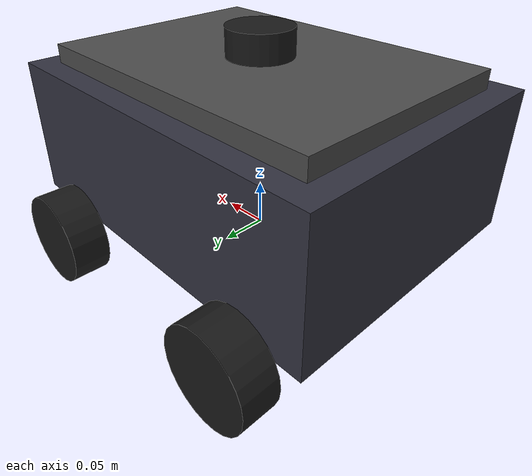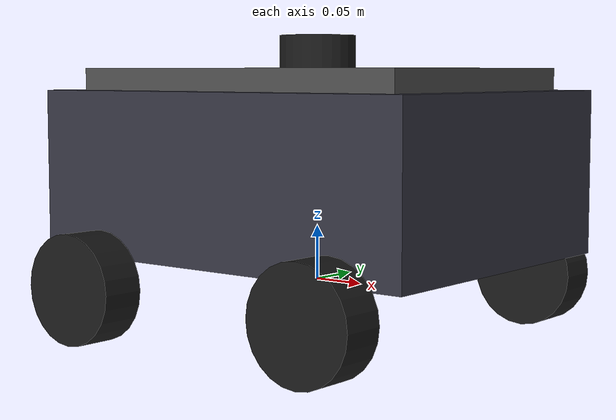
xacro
<?xml version="1.0"?>
<robot xmlns:xacro="http://www.ros.org/wiki/xacro" name="haller">

  <!-- Arguments -->
  <xacro:arg name="use_sim" default="false"/>
  <xacro:arg name="use_fake_hardware" default="false"/>
  <xacro:arg name="sim_gazebo" default="false"/>

  <!-- Properties -->
  <xacro:property name="use_sim" value="$(arg use_sim)"/>
  <xacro:property name="use_fake_hardware" value="$(arg use_fake_hardware)"/>
  <xacro:property name="sim_gazebo" value="$(arg sim_gazebo)"/>

  <!-- Include modular xacro files -->
  <xacro:include filename="$(find haller_description)/urdf/materials.xacro"/>
  <xacro:include filename="$(find haller_description)/urdf/inertia_macros.xacro"/>
  <xacro:include filename="$(find haller_description)/urdf/haller_base.xacro"/>
  <xacro:include filename="$(find haller_description)/urdf/haller_wheels.xacro"/>
  <xacro:include filename="$(find haller_description)/urdf/haller_sensors.xacro"/>
  <xacro:include filename="$(find haller_description)/urdf/haller_ros2_control.xacro"/>

  <!-- Base Link -->
  <link name="base_link"/>

  <!-- Base Footprint - for navigation -->
  <link name="base_footprint"/>
  <joint name="base_footprint_joint" type="fixed">
    <parent link="base_link"/>
    <child link="base_footprint"/>
    <origin xyz="0 0 -0.05" rpy="0 0 0"/>
  </joint>

  <!-- Chassis -->
  <xacro:haller_base/>

  <!-- Wheels -->
  <xacro:haller_wheels/>

  <!-- Sensors -->
  <xacro:haller_sensors/>

  <!-- ROS2 Control -->
  <xacro:haller_ros2_control
    use_sim="$(arg use_sim)"
    use_fake_hardware="$(arg use_fake_hardware)"
    sim_gazebo="$(arg sim_gazebo)"/>

  <!-- Gazebo plugins -->
  <xacro:if value="${sim_gazebo}">
    <xacro:include filename="$(find haller_description)/urdf/gazebo_plugins.xacro"/>
    <xacro:gazebo_plugins/>
  </xacro:if>

</robot>

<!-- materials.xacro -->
<robot xmlns:xacro="http://www.ros.org/wiki/xacro">

  <!-- Material Definitions -->

  <material name="white">
    <color rgba="1.0 1.0 1.0 1.0"/>
  </material>

  <material name="black">
    <color rgba="0.1 0.1 0.1 1.0"/>
  </material>

  <material name="dark_grey">
    <color rgba="0.3 0.3 0.3 1.0"/>
  </material>

  <material name="light_grey">
    <color rgba="0.7 0.7 0.7 1.0"/>
  </material>

  <material name="orange">
    <color rgba="1.0 0.5 0.0 1.0"/>
  </material>

  <material name="blue">
    <color rgba="0.2 0.4 0.8 1.0"/>
  </material>

  <material name="green">
    <color rgba="0.0 0.8 0.0 1.0"/>
  </material>

  <material name="red">
    <color rgba="0.8 0.0 0.0 1.0"/>
  </material>

  <material name="haller_chassis">
    <color rgba="0.2 0.2 0.25 1.0"/>
  </material>

  <material name="haller_accent">
    <color rgba="0.9 0.5 0.1 1.0"/>
  </material>

</robot>

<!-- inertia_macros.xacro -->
<robot xmlns:xacro="http://www.ros.org/wiki/xacro">

  <!-- Inertia Macros -->

  <!-- Box inertia -->
  <xacro:macro name="box_inertia" params="m x y z">
    <inertia
      ixx="${(1/12) * m * (y*y + z*z)}"
      ixy="0.0"
      ixz="0.0"
      iyy="${(1/12) * m * (x*x + z*z)}"
      iyz="0.0"
      izz="${(1/12) * m * (x*x + y*y)}"/>
  </xacro:macro>

  <!-- Cylinder inertia (oriented along z-axis) -->
  <xacro:macro name="cylinder_inertia" params="m r h">
    <inertia
      ixx="${(1/12) * m * (3*r*r + h*h)}"
      ixy="0.0"
      ixz="0.0"
      iyy="${(1/12) * m * (3*r*r + h*h)}"
      iyz="0.0"
      izz="${(1/2) * m * r*r}"/>
  </xacro:macro>

  <!-- Sphere inertia -->
  <xacro:macro name="sphere_inertia" params="m r">
    <inertia
      ixx="${(2/5) * m * r*r}"
      ixy="0.0"
      ixz="0.0"
      iyy="${(2/5) * m * r*r}"
      iyz="0.0"
      izz="${(2/5) * m * r*r}"/>
  </xacro:macro>

  <!-- Box inertial macro -->
  <xacro:macro name="box_inertial" params="mass x y z *origin">
    <inertial>
      <xacro:insert_block name="origin"/>
      <mass value="${mass}"/>
      <xacro:box_inertia m="${mass}" x="${x}" y="${y}" z="${z}"/>
    </inertial>
  </xacro:macro>

  <!-- Cylinder inertial macro -->
  <xacro:macro name="cylinder_inertial" params="mass radius length *origin">
    <inertial>
      <xacro:insert_block name="origin"/>
      <mass value="${mass}"/>
      <xacro:cylinder_inertia m="${mass}" r="${radius}" h="${length}"/>
    </inertial>
  </xacro:macro>

  <!-- Sphere inertial macro -->
  <xacro:macro name="sphere_inertial" params="mass radius *origin">
    <inertial>
      <xacro:insert_block name="origin"/>
      <mass value="${mass}"/>
      <xacro:sphere_inertia m="${mass}" r="${radius}"/>
    </inertial>
  </xacro:macro>

</robot>

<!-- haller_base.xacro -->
<robot xmlns:xacro="http://www.ros.org/wiki/xacro">

  <!-- Robot Dimensions -->
  <xacro:property name="chassis_length" value="0.40"/>
  <xacro:property name="chassis_width" value="0.30"/>
  <xacro:property name="chassis_height" value="0.15"/>
  <xacro:property name="chassis_mass" value="10.0"/>
  <xacro:property name="chassis_z_offset" value="0.10"/>

  <!-- Top plate for sensors -->
  <xacro:property name="top_plate_height" value="0.02"/>
  <xacro:property name="top_plate_mass" value="0.5"/>

  <xacro:macro name="haller_base">

    <!-- Chassis Link -->
    <link name="chassis_link">
      <visual>
        <origin xyz="0 0 ${chassis_z_offset}" rpy="0 0 0"/>
        <geometry>
          <box size="${chassis_length} ${chassis_width} ${chassis_height}"/>
        </geometry>
        <material name="haller_chassis"/>
      </visual>
      <collision>
        <origin xyz="0 0 ${chassis_z_offset}" rpy="0 0 0"/>
        <geometry>
          <box size="${chassis_length} ${chassis_width} ${chassis_height}"/>
        </geometry>
      </collision>
      <xacro:box_inertial mass="${chassis_mass}"
        x="${chassis_length}" y="${chassis_width}" z="${chassis_height}">
        <origin xyz="0 0 ${chassis_z_offset}" rpy="0 0 0"/>
      </xacro:box_inertial>
    </link>

    <joint name="chassis_joint" type="fixed">
      <parent link="base_link"/>
      <child link="chassis_link"/>
      <origin xyz="0 0 0" rpy="0 0 0"/>
    </joint>

    <!-- Top Plate Link -->
    <link name="top_plate_link">
      <visual>
        <origin xyz="0 0 0" rpy="0 0 0"/>
        <geometry>
          <box size="${chassis_length - 0.05} ${chassis_width - 0.05} ${top_plate_height}"/>
        </geometry>
        <material name="dark_grey"/>
      </visual>
      <collision>
        <origin xyz="0 0 0" rpy="0 0 0"/>
        <geometry>
          <box size="${chassis_length - 0.05} ${chassis_width - 0.05} ${top_plate_height}"/>
        </geometry>
      </collision>
      <xacro:box_inertial mass="${top_plate_mass}"
        x="${chassis_length - 0.05}" y="${chassis_width - 0.05}" z="${top_plate_height}">
        <origin xyz="0 0 0" rpy="0 0 0"/>
      </xacro:box_inertial>
    </link>

    <joint name="top_plate_joint" type="fixed">
      <parent link="chassis_link"/>
      <child link="top_plate_link"/>
      <origin xyz="0 0 ${chassis_z_offset + chassis_height/2 + top_plate_height/2}" rpy="0 0 0"/>
    </joint>

  </xacro:macro>

</robot>

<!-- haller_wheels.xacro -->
<robot xmlns:xacro="http://www.ros.org/wiki/xacro">

  <!-- Wheel Properties -->
  <xacro:property name="wheel_radius" value="0.05"/>
  <xacro:property name="wheel_width" value="0.04"/>
  <xacro:property name="wheel_mass" value="0.5"/>

  <!-- Wheel positions -->
  <xacro:property name="wheel_x_offset" value="0.13"/>
  <xacro:property name="wheel_y_offset" value="0.17"/>
  <xacro:property name="wheel_z_offset" value="0.0"/>

  <!-- Wheel macro -->
  <xacro:macro name="wheel" params="prefix x_reflect y_reflect">
    <link name="${prefix}_wheel_link">
      <visual>
        <origin xyz="0 0 0" rpy="${pi/2} 0 0"/>
        <geometry>
          <cylinder radius="${wheel_radius}" length="${wheel_width}"/>
        </geometry>
        <material name="black"/>
      </visual>
      <collision>
        <origin xyz="0 0 0" rpy="${pi/2} 0 0"/>
        <geometry>
          <cylinder radius="${wheel_radius}" length="${wheel_width}"/>
        </geometry>
      </collision>
      <xacro:cylinder_inertial mass="${wheel_mass}"
        radius="${wheel_radius}" length="${wheel_width}">
        <origin xyz="0 0 0" rpy="${pi/2} 0 0"/>
      </xacro:cylinder_inertial>
    </link>

    <joint name="${prefix}_wheel_joint" type="continuous">
      <parent link="base_link"/>
      <child link="${prefix}_wheel_link"/>
      <origin
        xyz="${x_reflect * wheel_x_offset} ${y_reflect * wheel_y_offset} ${wheel_z_offset}"
        rpy="0 0 0"/>
      <axis xyz="0 1 0"/>
      <dynamics damping="0.1" friction="0.1"/>
    </joint>

    <!-- Gazebo wheel properties -->
    <gazebo reference="${prefix}_wheel_link">
      <material>Gazebo/DarkGrey</material>
      <mu1>1.0</mu1>
      <mu2>1.0</mu2>
      <kp>1000000.0</kp>
      <kd>100.0</kd>
      <minDepth>0.001</minDepth>
      <maxVel>1.0</maxVel>
    </gazebo>
  </xacro:macro>

  <!-- All wheels macro -->
  <xacro:macro name="haller_wheels">
    <!-- Front wheels -->
    <xacro:wheel prefix="front_left" x_reflect="1" y_reflect="1"/>
    <xacro:wheel prefix="front_right" x_reflect="1" y_reflect="-1"/>

    <!-- Rear wheels -->
    <xacro:wheel prefix="rear_left" x_reflect="-1" y_reflect="1"/>
    <xacro:wheel prefix="rear_right" x_reflect="-1" y_reflect="-1"/>
  </xacro:macro>

</robot>

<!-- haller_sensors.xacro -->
<robot xmlns:xacro="http://www.ros.org/wiki/xacro">

  <!-- Sensor mounting properties -->
  <xacro:property name="lidar_z_offset" value="0.22"/>
  <xacro:property name="camera_x_offset" value="0.18"/>
  <xacro:property name="camera_z_offset" value="0.15"/>

  <!-- LiDAR properties (Slamtech RPLIDAR) -->
  <xacro:property name="lidar_radius" value="0.035"/>
  <xacro:property name="lidar_height" value="0.04"/>
  <xacro:property name="lidar_mass" value="0.2"/>

  <!-- Camera properties -->
  <xacro:property name="camera_size" value="0.03"/>
  <xacro:property name="camera_mass" value="0.1"/>

  <xacro:macro name="haller_sensors">

    <!-- ==================== LiDAR Sensor ==================== -->
    <link name="lidar_link">
      <visual>
        <origin xyz="0 0 0" rpy="0 0 0"/>
        <geometry>
          <cylinder radius="${lidar_radius}" length="${lidar_height}"/>
        </geometry>
        <material name="black"/>
      </visual>
      <collision>
        <origin xyz="0 0 0" rpy="0 0 0"/>
        <geometry>
          <cylinder radius="${lidar_radius}" length="${lidar_height}"/>
        </geometry>
      </collision>
      <xacro:cylinder_inertial mass="${lidar_mass}"
        radius="${lidar_radius}" length="${lidar_height}">
        <origin xyz="0 0 0" rpy="0 0 0"/>
      </xacro:cylinder_inertial>
    </link>

    <joint name="lidar_joint" type="fixed">
      <parent link="top_plate_link"/>
      <child link="lidar_link"/>
      <origin xyz="0 0 ${lidar_height/2}" rpy="0 0 0"/>
    </joint>

    <!-- Laser frame for scan data -->
    <link name="laser_frame"/>
    <joint name="laser_frame_joint" type="fixed">
      <parent link="lidar_link"/>
      <child link="laser_frame"/>
      <origin xyz="0 0 ${lidar_height/2}" rpy="0 0 0"/>
    </joint>

    <gazebo reference="lidar_link">
      <material>Gazebo/Black</material>
    </gazebo>

    <!-- ==================== Front Camera ==================== -->
    <link name="camera_link">
      <visual>
        <origin xyz="0 0 0" rpy="0 0 0"/>
        <geometry>
          <box size="${camera_size} ${camera_size * 2} ${camera_size}"/>
        </geometry>
        <material name="dark_grey"/>
      </visual>
      <collision>
        <origin xyz="0 0 0" rpy="0 0 0"/>
        <geometry>
          <box size="${camera_size} ${camera_size * 2} ${camera_size}"/>
        </geometry>
      </collision>
      <xacro:box_inertial mass="${camera_mass}"
        x="${camera_size}" y="${camera_size * 2}" z="${camera_size}">
        <origin xyz="0 0 0" rpy="0 0 0"/>
      </xacro:box_inertial>
    </link>

    <joint name="camera_joint" type="fixed">
      <parent link="chassis_link"/>
      <child link="camera_link"/>
      <origin xyz="${camera_x_offset} 0 ${camera_z_offset}" rpy="0 0 0"/>
    </joint>

    <!-- Camera optical frame (Z forward, X right, Y down) -->
    <link name="camera_optical_frame"/>
    <joint name="camera_optical_joint" type="fixed">
      <parent link="camera_link"/>
      <child link="camera_optical_frame"/>
      <origin xyz="0 0 0" rpy="${-pi/2} 0 ${-pi/2}"/>
    </joint>

    <gazebo reference="camera_link">
      <material>Gazebo/Grey</material>
    </gazebo>

    <!-- ==================== IMU Sensor ==================== -->
    <link name="imu_link"/>
    <joint name="imu_joint" type="fixed">
      <parent link="chassis_link"/>
      <child link="imu_link"/>
      <origin xyz="0 0 0.1" rpy="0 0 0"/>
    </joint>

  </xacro:macro>

</robot>
